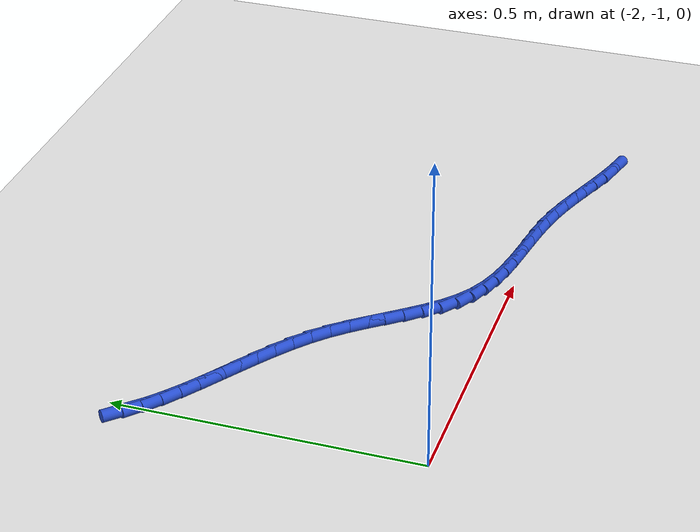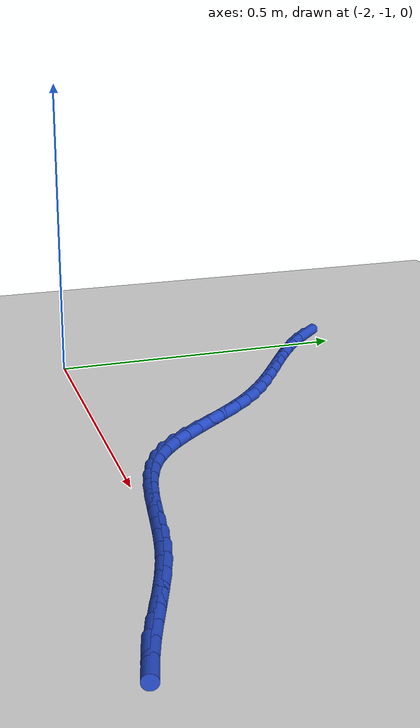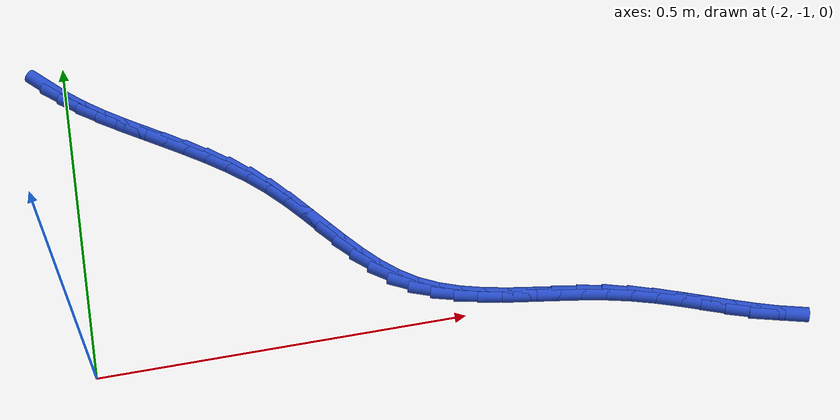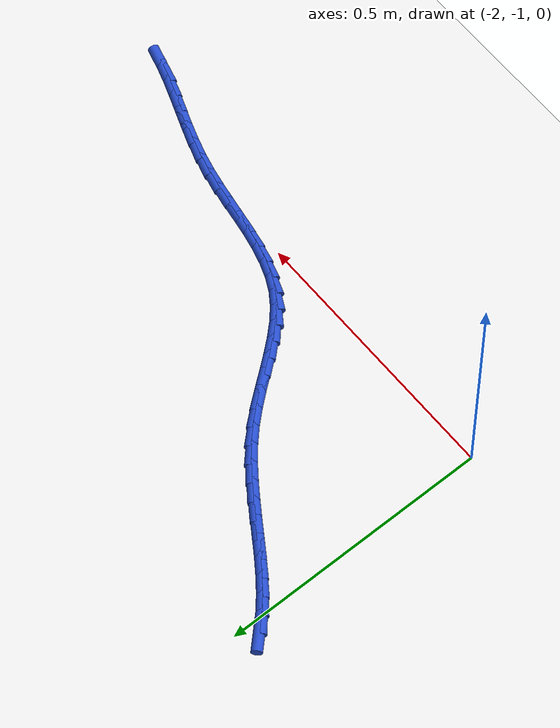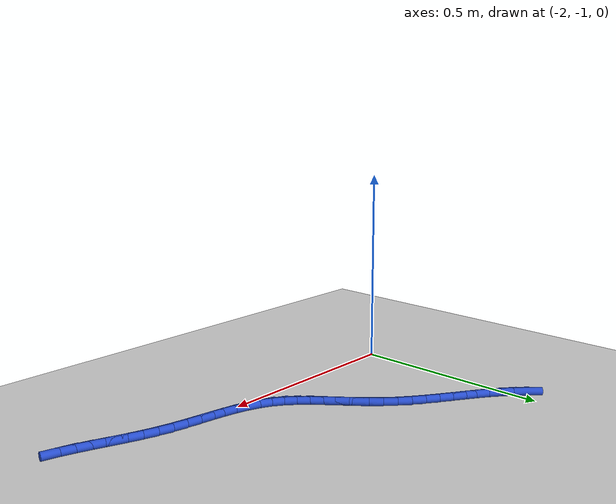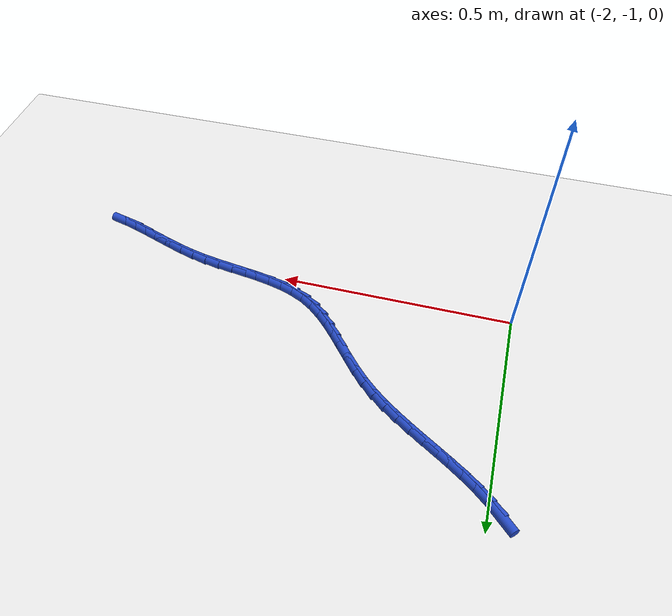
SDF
<sdf version="1.6">
 <world name="default">
  <model name="ground_plane">
   <static>1</static>
   <link name="link">
    <collision name="collision">
     <geometry><plane><normal>0 0 1</normal><size>100 100</size></plane></geometry>
     <surface><friction><ode><mu>100</mu><mu2>50</mu2></ode></friction></surface>
    </collision>
    <visual name="visual">
     <cast_shadows>0</cast_shadows>
     <geometry><plane><normal>0 0 1</normal><size>100 100</size></plane></geometry>
     <material>
      <script><uri>file://media/materials/scripts/gazebo.material</uri><name>Gazebo/WhiteGlow</name></script>
     </material>
    </visual>
   </link>
  </model>
  <model name="line">
   <link name="link_123">
    <pose>-2.0194524374927827 -0.5363124615375428 0.01 0 1.57 -0.7975585232904336</pose>
    <collision name="collision">
     <geometry><cylinder><radius>0.01</radius><length>0.08</length></cylinder></geometry>
    </collision>
    <visual name="visual">
     <material>
      <script><name>Gazebo/Blue</name><uri>file://media/materials/scripts/gazebo.material</uri></script>
     </material>
     <geometry><cylinder><radius>0.01</radius><length>0.08</length></cylinder></geometry>
    </visual>
   </link>
   <link name="link_124">
    <pose>-1.9982434454063582 -0.5580436473814101 0.01 0 1.57 -0.7162908417660565</pose>
    <collision name="collision">
     <geometry><cylinder><radius>0.01</radius><length>0.08</length></cylinder></geometry>
    </collision>
    <visual name="visual">
     <material>
      <script><name>Gazebo/Blue</name><uri>file://media/materials/scripts/gazebo.material</uri></script>
     </material>
     <geometry><cylinder><radius>0.01</radius><length>0.08</length></cylinder></geometry>
    </visual>
   </link>
   <link name="link_125">
    <pose>-1.974759055714643 -0.5784874363069817 0.01 0 1.57 -0.6555273928783053</pose>
    <collision name="collision">
     <geometry><cylinder><radius>0.01</radius><length>0.08</length></cylinder></geometry>
    </collision>
    <visual name="visual">
     <material>
      <script><name>Gazebo/Blue</name><uri>file://media/materials/scripts/gazebo.material</uri></script>
     </material>
     <geometry><cylinder><radius>0.01</radius><length>0.08</length></cylinder></geometry>
    </visual>
   </link>
   <link name="link_126">
    <pose>-1.9494309409244484 -0.5979638200519467 0.01 0 1.57 -0.6135028083195488</pose>
    <collision name="collision">
     <geometry><cylinder><radius>0.01</radius><length>0.08</length></cylinder></geometry>
    </collision>
    <visual name="visual">
     <material>
      <script><name>Gazebo/Blue</name><uri>file://media/materials/scripts/gazebo.material</uri></script>
     </material>
     <geometry><cylinder><radius>0.01</radius><length>0.08</length></cylinder></geometry>
    </visual>
   </link>
   <link name="link_127">
    <pose>-1.9226907735425836 -0.6167927903539957 0.01 0 1.57 -0.588531467932494</pose>
    <collision name="collision">
     <geometry><cylinder><radius>0.01</radius><length>0.08</length></cylinder></geometry>
    </collision>
    <visual name="visual">
     <material>
      <script><name>Gazebo/Blue</name><uri>file://media/materials/scripts/gazebo.material</uri></script>
     </material>
     <geometry><cylinder><radius>0.01</radius><length>0.08</length></cylinder></geometry>
    </visual>
   </link>
   <link name="link_128">
    <pose>-1.8949702260758592 -0.6352943389508187 0.01 0 1.57 -0.5793313195181152</pose>
    <collision name="collision">
     <geometry><cylinder><radius>0.01</radius><length>0.08</length></cylinder></geometry>
    </collision>
    <visual name="visual">
     <material>
      <script><name>Gazebo/Blue</name><uri>file://media/materials/scripts/gazebo.material</uri></script>
     </material>
     <geometry><cylinder><radius>0.01</radius><length>0.08</length></cylinder></geometry>
    </visual>
   </link>
   <link name="link_129">
    <pose>-1.8667009710310845 -0.6537884575801055 0.01 0 1.57 -0.585131123071306</pose>
    <collision name="collision">
     <geometry><cylinder><radius>0.01</radius><length>0.08</length></cylinder></geometry>
    </collision>
    <visual name="visual">
     <material>
      <script><name>Gazebo/Blue</name><uri>file://media/materials/scripts/gazebo.material</uri></script>
     </material>
     <geometry><cylinder><radius>0.01</radius><length>0.08</length></cylinder></geometry>
    </visual>
   </link>
   <link name="link_130">
    <pose>-1.8383146809150692 -0.6725951379795464 0.01 0 1.57 -0.605665368421482</pose>
    <collision name="collision">
     <geometry><cylinder><radius>0.01</radius><length>0.08</length></cylinder></geometry>
    </collision>
    <visual name="visual">
     <material>
      <script><name>Gazebo/Blue</name><uri>file://media/materials/scripts/gazebo.material</uri></script>
     </material>
     <geometry><cylinder><radius>0.01</radius><length>0.08</length></cylinder></geometry>
    </visual>
   </link>
   <link name="link_131">
    <pose>-1.8102430282346238 -0.692034371886831 0.01 0 1.57 -0.6411024772000389</pose>
    <collision name="collision">
     <geometry><cylinder><radius>0.01</radius><length>0.08</length></cylinder></geometry>
    </collision>
    <visual name="visual">
     <material>
      <script><name>Gazebo/Blue</name><uri>file://media/materials/scripts/gazebo.material</uri></script>
     </material>
     <geometry><cylinder><radius>0.01</radius><length>0.08</length></cylinder></geometry>
    </visual>
   </link>
   <link name="link_132">
    <pose>-1.7829176854965574 -0.7124261510396503 0.01 0 1.57 -0.6919068796565279</pose>
    <collision name="collision">
     <geometry><cylinder><radius>0.01</radius><length>0.08</length></cylinder></geometry>
    </collision>
    <visual name="visual">
     <material>
      <script><name>Gazebo/Blue</name><uri>file://media/materials/scripts/gazebo.material</uri></script>
     </material>
     <geometry><cylinder><radius>0.01</radius><length>0.08</length></cylinder></geometry>
    </visual>
   </link>
   <link name="link_133">
    <pose>-1.7567703252076812 -0.7340904671756932 0.01 0 1.57 -0.7585553461944682</pose>
    <collision name="collision">
     <geometry><cylinder><radius>0.01</radius><length>0.08</length></cylinder></geometry>
    </collision>
    <visual name="visual">
     <material>
      <script><name>Gazebo/Blue</name><uri>file://media/materials/scripts/gazebo.material</uri></script>
     </material>
     <geometry><cylinder><radius>0.01</radius><length>0.08</length></cylinder></geometry>
    </visual>
   </link>
   <link name="link_134">
    <pose>-1.7322314662236082 -0.7573460796748359 0.01 0 1.57 -0.8297093607581691</pose>
    <collision name="collision">
     <geometry><cylinder><radius>0.01</radius><length>0.08</length></cylinder></geometry>
    </collision>
    <visual name="visual">
     <material>
      <script><name>Gazebo/Blue</name><uri>file://media/materials/scripts/gazebo.material</uri></script>
     </material>
     <geometry><cylinder><radius>0.01</radius><length>0.08</length></cylinder></geometry>
    </visual>
   </link>
   <link name="link_135">
    <pose>-1.709464180868277 -0.7822260551319008 0.01 0 1.57 -0.8790740399069739</pose>
    <collision name="collision">
     <geometry><cylinder><radius>0.01</radius><length>0.08</length></cylinder></geometry>
    </collision>
    <visual name="visual">
     <material>
      <script><name>Gazebo/Blue</name><uri>file://media/materials/scripts/gazebo.material</uri></script>
     </material>
     <geometry><cylinder><radius>0.01</radius><length>0.08</length></cylinder></geometry>
    </visual>
   </link>
   <link name="link_136">
    <pose>-1.688023189025958 -0.8081136035079611 0.01 0 1.57 -0.9032355397151973</pose>
    <collision name="collision">
     <geometry><cylinder><radius>0.01</radius><length>0.08</length></cylinder></geometry>
    </collision>
    <visual name="visual">
     <material>
      <script><name>Gazebo/Blue</name><uri>file://media/materials/scripts/gazebo.material</uri></script>
     </material>
     <geometry><cylinder><radius>0.01</radius><length>0.08</length></cylinder></geometry>
    </visual>
   </link>
   <link name="link_137">
    <pose>-1.667379061144516 -0.8343020443224499 0.01 0 1.57 -0.9019822399037251</pose>
    <collision name="collision">
     <geometry><cylinder><radius>0.01</radius><length>0.08</length></cylinder></geometry>
    </collision>
    <visual name="visual">
     <material>
      <script><name>Gazebo/Blue</name><uri>file://media/materials/scripts/gazebo.material</uri></script>
     </material>
     <geometry><cylinder><radius>0.01</radius><length>0.08</length></cylinder></geometry>
    </visual>
   </link>
   <link name="link_138">
    <pose>-1.6470023676718142 -0.8600846970947995 0.01 0 1.57 -0.8741425171924547</pose>
    <collision name="collision">
     <geometry><cylinder><radius>0.01</radius><length>0.08</length></cylinder></geometry>
    </collision>
    <visual name="visual">
     <material>
      <script><name>Gazebo/Blue</name><uri>file://media/materials/scripts/gazebo.material</uri></script>
     </material>
     <geometry><cylinder><radius>0.01</radius><length>0.08</length></cylinder></geometry>
    </visual>
   </link>
   <link name="link_139">
    <pose>-1.6263636790557174 -0.884754881344441 0.01 0 1.57 -0.8174757987642637</pose>
    <collision name="collision">
     <geometry><cylinder><radius>0.01</radius><length>0.08</length></cylinder></geometry>
    </collision>
    <visual name="visual">
     <material>
      <script><name>Gazebo/Blue</name><uri>file://media/materials/scripts/gazebo.material</uri></script>
     </material>
     <geometry><cylinder><radius>0.01</radius><length>0.08</length></cylinder></geometry>
    </visual>
   </link>
   <link name="link_140">
    <pose>-1.60493356574409 -0.9076059165908074 0.01 0 1.57 -0.7291442695377924</pose>
    <collision name="collision">
     <geometry><cylinder><radius>0.01</radius><length>0.08</length></cylinder></geometry>
    </collision>
    <visual name="visual">
     <material>
      <script><name>Gazebo/Blue</name><uri>file://media/materials/scripts/gazebo.material</uri></script>
     </material>
     <geometry><cylinder><radius>0.01</radius><length>0.08</length></cylinder></geometry>
    </visual>
   </link>
   <link name="link_141">
    <pose>-1.5821825981847955 -0.9279311223533308 0.01 0 1.57 -0.6072837391219253</pose>
    <collision name="collision">
     <geometry><cylinder><radius>0.01</radius><length>0.08</length></cylinder></geometry>
    </collision>
    <visual name="visual">
     <material>
      <script><name>Gazebo/Blue</name><uri>file://media/materials/scripts/gazebo.material</uri></script>
     </material>
     <geometry><cylinder><radius>0.01</radius><length>0.08</length></cylinder></geometry>
    </visual>
   </link>
   <link name="link_142">
    <pose>-1.5575823466456125 -0.9450254286091442 0.01 0 1.57 -0.46857915579110787</pose>
    <collision name="collision">
     <geometry><cylinder><radius>0.01</radius><length>0.08</length></cylinder></geometry>
    </collision>
    <visual name="visual">
     <material>
      <script><name>Gazebo/Blue</name><uri>file://media/materials/scripts/gazebo.material</uri></script>
     </material>
     <geometry><cylinder><radius>0.01</radius><length>0.08</length></cylinder></geometry>
    </visual>
   </link>
   <link name="link_143">
    <pose>-1.5308393267145801 -0.9585622029866345 0.01 0 1.57 -0.3518556866187214</pose>
    <collision name="collision">
     <geometry><cylinder><radius>0.01</radius><length>0.08</length></cylinder></geometry>
    </collision>
    <visual name="visual">
     <material>
      <script><name>Gazebo/Blue</name><uri>file://media/materials/scripts/gazebo.material</uri></script>
     </material>
     <geometry><cylinder><radius>0.01</radius><length>0.08</length></cylinder></geometry>
    </visual>
   </link>
   <link name="link_144">
    <pose>-1.5021960115315858 -0.9690781055469581 0.01 0 1.57 -0.2634117494236148</pose>
    <collision name="collision">
     <geometry><cylinder><radius>0.01</radius><length>0.08</length></cylinder></geometry>
    </collision>
    <visual name="visual">
     <material>
      <script><name>Gazebo/Blue</name><uri>file://media/materials/scripts/gazebo.material</uri></script>
     </material>
     <geometry><cylinder><radius>0.01</radius><length>0.08</length></cylinder></geometry>
    </visual>
   </link>
   <link name="link_145">
    <pose>-1.4719692516785805 -0.9772295996503944 0.01 0 1.57 -0.20181496664927454</pose>
    <collision name="collision">
     <geometry><cylinder><radius>0.01</radius><length>0.08</length></cylinder></geometry>
    </collision>
    <visual name="visual">
     <material>
      <script><name>Gazebo/Blue</name><uri>file://media/materials/scripts/gazebo.material</uri></script>
     </material>
     <geometry><cylinder><radius>0.01</radius><length>0.08</length></cylinder></geometry>
    </visual>
   </link>
   <link name="link_146">
    <pose>-1.4404758977375176 -0.9836731486572227 0.01 0 1.57 -0.16469532314123952</pose>
    <collision name="collision">
     <geometry><cylinder><radius>0.01</radius><length>0.08</length></cylinder></geometry>
    </collision>
    <visual name="visual">
     <material>
      <script><name>Gazebo/Blue</name><uri>file://media/materials/scripts/gazebo.material</uri></script>
     </material>
     <geometry><cylinder><radius>0.01</radius><length>0.08</length></cylinder></geometry>
    </visual>
   </link>
   <link name="link_147">
    <pose>-1.4080328002903464 -0.9890652159277228 0.01 0 1.57 -0.14994389434416283</pose>
    <collision name="collision">
     <geometry><cylinder><radius>0.01</radius><length>0.08</length></cylinder></geometry>
    </collision>
    <visual name="visual">
     <material>
      <script><name>Gazebo/Blue</name><uri>file://media/materials/scripts/gazebo.material</uri></script>
     </material>
     <geometry><cylinder><radius>0.01</radius><length>0.08</length></cylinder></geometry>
    </visual>
   </link>
   <link name="link_148">
    <pose>-1.37495680991902 -0.9940622648221744 0.01 0 1.57 -0.15619476437313332</pose>
    <collision name="collision">
     <geometry><cylinder><radius>0.01</radius><length>0.08</length></cylinder></geometry>
    </collision>
    <visual name="visual">
     <material>
      <script><name>Gazebo/Blue</name><uri>file://media/materials/scripts/gazebo.material</uri></script>
     </material>
     <geometry><cylinder><radius>0.01</radius><length>0.08</length></cylinder></geometry>
    </visual>
   </link>
   <link name="link_149">
    <pose>-1.3415647772054884 -0.9993207587008566 0.01 0 1.57 -0.18290355321469023</pose>
    <collision name="collision">
     <geometry><cylinder><radius>0.01</radius><length>0.08</length></cylinder></geometry>
    </collision>
    <visual name="visual">
     <material>
      <script><name>Gazebo/Blue</name><uri>file://media/materials/scripts/gazebo.material</uri></script>
     </material>
     <geometry><cylinder><radius>0.01</radius><length>0.08</length></cylinder></geometry>
    </visual>
   </link>
   <link name="link_150">
    <pose>-1.3081735527317044 -1.0054971609240493 0.01 0 1.57 -0.2301247094540004</pose>
    <collision name="collision">
     <geometry><cylinder><radius>0.01</radius><length>0.08</length></cylinder></geometry>
    </collision>
    <visual name="visual">
     <material>
      <script><name>Gazebo/Blue</name><uri>file://media/materials/scripts/gazebo.material</uri></script>
     </material>
     <geometry><cylinder><radius>0.01</radius><length>0.08</length></cylinder></geometry>
    </visual>
   </link>
   <link name="link_151">
    <pose>-1.2750993203160195 -1.0132456238328116 0.01 0 1.57 -0.2865795890639448</pose>
    <collision name="collision">
     <geometry><cylinder><radius>0.01</radius><length>0.08</length></cylinder></geometry>
    </collision>
    <visual name="visual">
     <material>
      <script><name>Gazebo/Blue</name><uri>file://media/materials/scripts/gazebo.material</uri></script>
     </material>
     <geometry><cylinder><radius>0.01</radius><length>0.08</length></cylinder></geometry>
    </visual>
   </link>
   <link name="link_152">
    <pose>-1.2425480267989486 -1.0228382156606113 0.01 0 1.57 -0.32789102609657206</pose>
    <collision name="collision">
     <geometry><cylinder><radius>0.01</radius><length>0.08</length></cylinder></geometry>
    </collision>
    <visual name="visual">
     <material>
      <script><name>Gazebo/Blue</name><uri>file://media/materials/scripts/gazebo.material</uri></script>
     </material>
     <geometry><cylinder><radius>0.01</radius><length>0.08</length></cylinder></geometry>
    </visual>
   </link>
   <link name="link_153">
    <pose>-1.2104934303269719 -1.0337422328511576 0.01 0 1.57 -0.3511450258014224</pose>
    <collision name="collision">
     <geometry><cylinder><radius>0.01</radius><length>0.08</length></cylinder></geometry>
    </collision>
    <visual name="visual">
     <material>
      <script><name>Gazebo/Blue</name><uri>file://media/materials/scripts/gazebo.material</uri></script>
     </material>
     <geometry><cylinder><radius>0.01</radius><length>0.08</length></cylinder></geometry>
    </visual>
   </link>
   <link name="link_154">
    <pose>-1.1788799006033652 -1.0453231107729068 0.01 0 1.57 -0.3563158044068496</pose>
    <collision name="collision">
     <geometry><cylinder><radius>0.01</radius><length>0.08</length></cylinder></geometry>
    </collision>
    <visual name="visual">
     <material>
      <script><name>Gazebo/Blue</name><uri>file://media/materials/scripts/gazebo.material</uri></script>
     </material>
     <geometry><cylinder><radius>0.01</radius><length>0.08</length></cylinder></geometry>
    </visual>
   </link>
   <link name="link_155">
    <pose>-1.1476518073314037 -1.0569462847943152 0.01 0 1.57 -0.34290346666335886</pose>
    <collision name="collision">
     <geometry><cylinder><radius>0.01</radius><length>0.08</length></cylinder></geometry>
    </collision>
    <visual name="visual">
     <material>
      <script><name>Gazebo/Blue</name><uri>file://media/materials/scripts/gazebo.material</uri></script>
     </material>
     <geometry><cylinder><radius>0.01</radius><length>0.08</length></cylinder></geometry>
    </visual>
   </link>
   <link name="link_156">
    <pose>-1.1167535202143635 -1.0679771902838393 0.01 0 1.57 -0.30983198899510855</pose>
    <collision name="collision">
     <geometry><cylinder><radius>0.01</radius><length>0.08</length></cylinder></geometry>
    </collision>
    <visual name="visual">
     <material>
      <script><name>Gazebo/Blue</name><uri>file://media/materials/scripts/gazebo.material</uri></script>
     </material>
     <geometry><cylinder><radius>0.01</radius><length>0.08</length></cylinder></geometry>
    </visual>
   </link>
   <link name="link_157">
    <pose>-1.0861294089555198 -1.077781262609936 0.01 0 1.57 -0.25551455302750564</pose>
    <collision name="collision">
     <geometry><cylinder><radius>0.01</radius><length>0.08</length></cylinder></geometry>
    </collision>
    <visual name="visual">
     <material>
      <script><name>Gazebo/Blue</name><uri>file://media/materials/scripts/gazebo.material</uri></script>
     </material>
     <geometry><cylinder><radius>0.01</radius><length>0.08</length></cylinder></geometry>
    </visual>
   </link>
  </model>
 </world>
</sdf>
